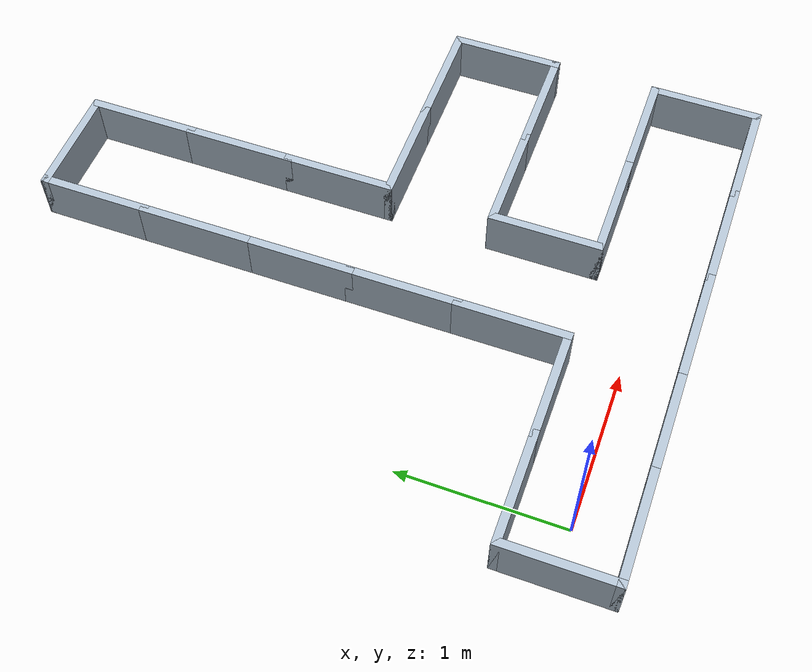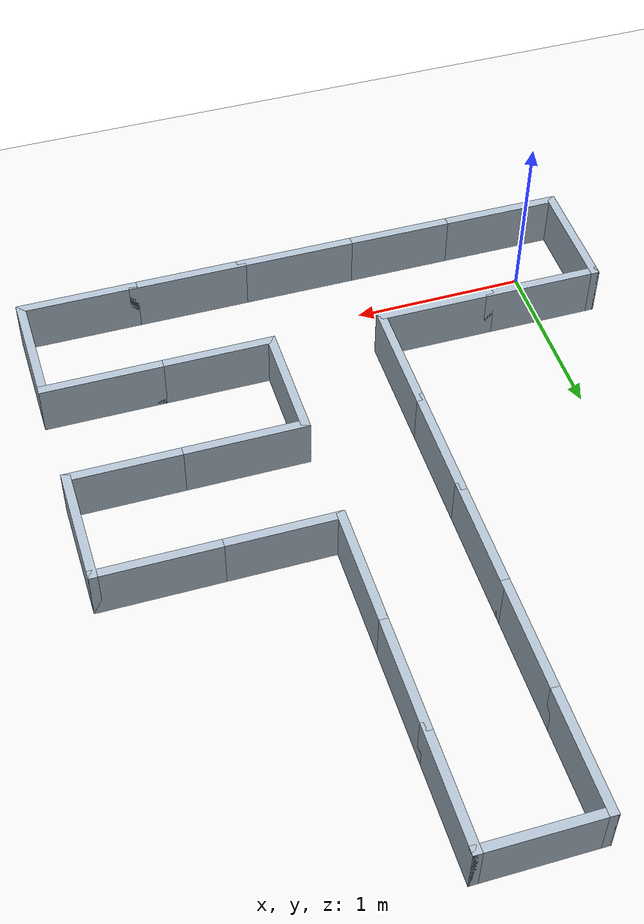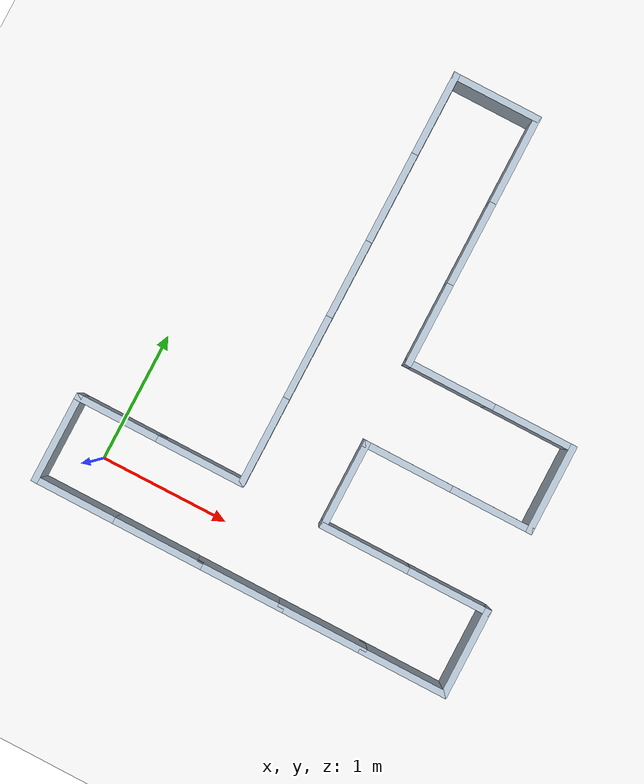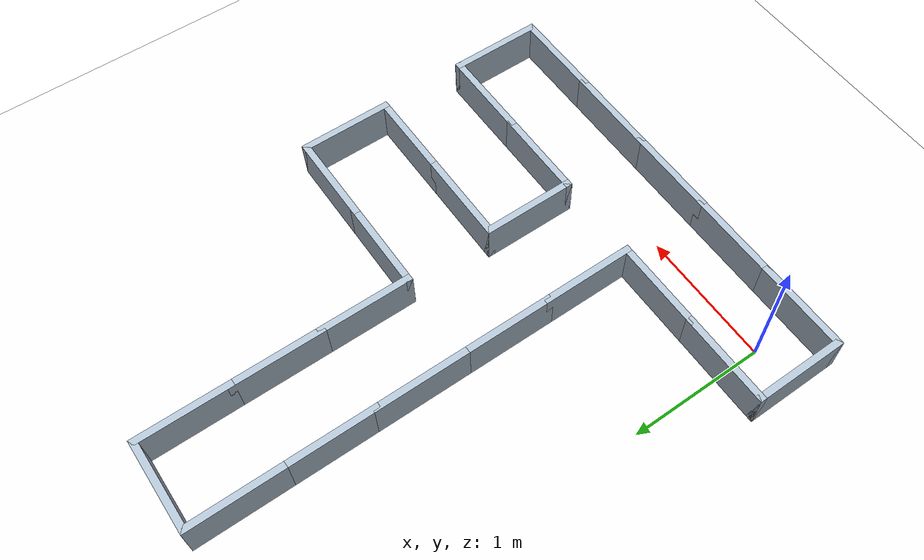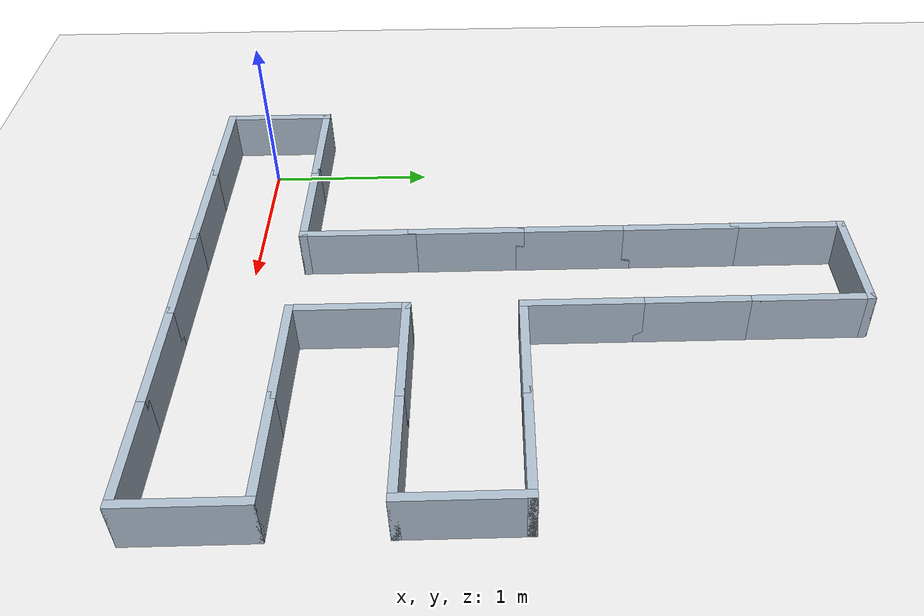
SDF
<sdf version="1.7">
  <world name="default">
    <gui fullscreen="0">
      <camera name="user_camera">
        <pose>1.3 -3 6 0 0.85 1.5708</pose>
        <view_controller>orbit</view_controller>
      </camera>
    </gui>
    <spherical_coordinates>
      <surface_model>EARTH_WGS84</surface_model>
      <latitude_deg>0</latitude_deg>
      <longitude_deg>0</longitude_deg>
      <elevation>0</elevation>
      <heading_deg>0</heading_deg>
    </spherical_coordinates>
    <scene>
      <ambient>0.55 0.55 0.55 1</ambient>
      <background>0.75 0.82 0.90 1</background>
      <shadows>1</shadows>
    </scene>
    <light name="sun" type="directional">
      <cast_shadows>1</cast_shadows>
      <pose>0 0 20 0 0 0</pose>
      <diffuse>0.9 0.9 0.9 1</diffuse>
      <specular>0.2 0.2 0.2 1</specular>
      <attenuation>
        <range>100</range>
        <constant>0.9</constant>
        <linear>0.01</linear>
        <quadratic>0.001</quadratic>
      </attenuation>
      <direction>-0.4 0.2 -0.9</direction>
    </light>
    <model name="ground_plane">
      <static>1</static>
      <link name="link">
        <collision name="collision">
          <geometry>
            <plane>
              <normal>0 0 1</normal>
              <size>100 100</size>
            </plane>
          </geometry>
        </collision>
        <visual name="visual">
          <geometry>
            <plane>
              <normal>0 0 1</normal>
              <size>100 100</size>
            </plane>
          </geometry>
          <material>
            <ambient>0.80 0.80 0.80 1</ambient>
            <diffuse>0.92 0.92 0.92 1</diffuse>
          </material>
        </visual>
      </link>
    </model>
    <model name="return_left_opening">
      <static>true</static>
      <link name="wall_0_0_-1_0">
        <pose>-0.325 0.0 .15 0 0 0</pose>
        <collision name="collision">
          <geometry>
            <box>
              <size>.05 .70 .30</size>
            </box>
          </geometry>
        </collision>
        <visual name="visual">
          <geometry>
            <box>
              <size>.05 .70 .30</size>
            </box>
          </geometry>
          <material>
            <ambient>.5 .56 .63 1</ambient>
            <diffuse>.68 .74 .80 1</diffuse>
          </material>
        </visual>
      </link>
      <link name="wall_0_0_0_-1">
        <pose>0.0 -0.325 .15 0 0 0</pose>
        <collision name="collision">
          <geometry>
            <box>
              <size>.70 .05 .30</size>
            </box>
          </geometry>
        </collision>
        <visual name="visual">
          <geometry>
            <box>
              <size>.70 .05 .30</size>
            </box>
          </geometry>
          <material>
            <ambient>.5 .56 .63 1</ambient>
            <diffuse>.68 .74 .80 1</diffuse>
          </material>
        </visual>
      </link>
      <link name="wall_0_0_0_1">
        <pose>0.0 0.325 .15 0 0 0</pose>
        <collision name="collision">
          <geometry>
            <box>
              <size>.70 .05 .30</size>
            </box>
          </geometry>
        </collision>
        <visual name="visual">
          <geometry>
            <box>
              <size>.70 .05 .30</size>
            </box>
          </geometry>
          <material>
            <ambient>.5 .56 .63 1</ambient>
            <diffuse>.68 .74 .80 1</diffuse>
          </material>
        </visual>
      </link>
      <link name="wall_1_0_0_-1">
        <pose>0.65 -0.325 .15 0 0 0</pose>
        <collision name="collision">
          <geometry>
            <box>
              <size>.70 .05 .30</size>
            </box>
          </geometry>
        </collision>
        <visual name="visual">
          <geometry>
            <box>
              <size>.70 .05 .30</size>
            </box>
          </geometry>
          <material>
            <ambient>.5 .56 .63 1</ambient>
            <diffuse>.68 .74 .80 1</diffuse>
          </material>
        </visual>
      </link>
      <link name="wall_1_0_0_1">
        <pose>0.65 0.325 .15 0 0 0</pose>
        <collision name="collision">
          <geometry>
            <box>
              <size>.70 .05 .30</size>
            </box>
          </geometry>
        </collision>
        <visual name="visual">
          <geometry>
            <box>
              <size>.70 .05 .30</size>
            </box>
          </geometry>
          <material>
            <ambient>.5 .56 .63 1</ambient>
            <diffuse>.68 .74 .80 1</diffuse>
          </material>
        </visual>
      </link>
      <link name="wall_2_0_0_-1">
        <pose>1.3 -0.325 .15 0 0 0</pose>
        <collision name="collision">
          <geometry>
            <box>
              <size>.70 .05 .30</size>
            </box>
          </geometry>
        </collision>
        <visual name="visual">
          <geometry>
            <box>
              <size>.70 .05 .30</size>
            </box>
          </geometry>
          <material>
            <ambient>.5 .56 .63 1</ambient>
            <diffuse>.68 .74 .80 1</diffuse>
          </material>
        </visual>
      </link>
      <link name="wall_2_1_-1_0">
        <pose>0.9750000000000001 0.65 .15 0 0 0</pose>
        <collision name="collision">
          <geometry>
            <box>
              <size>.05 .70 .30</size>
            </box>
          </geometry>
        </collision>
        <visual name="visual">
          <geometry>
            <box>
              <size>.05 .70 .30</size>
            </box>
          </geometry>
          <material>
            <ambient>.5 .56 .63 1</ambient>
            <diffuse>.68 .74 .80 1</diffuse>
          </material>
        </visual>
      </link>
      <link name="wall_2_1_1_0">
        <pose>1.625 0.65 .15 0 0 0</pose>
        <collision name="collision">
          <geometry>
            <box>
              <size>.05 .70 .30</size>
            </box>
          </geometry>
        </collision>
        <visual name="visual">
          <geometry>
            <box>
              <size>.05 .70 .30</size>
            </box>
          </geometry>
          <material>
            <ambient>.5 .56 .63 1</ambient>
            <diffuse>.68 .74 .80 1</diffuse>
          </material>
        </visual>
      </link>
      <link name="wall_2_2_-1_0">
        <pose>0.9750000000000001 1.3 .15 0 0 0</pose>
        <collision name="collision">
          <geometry>
            <box>
              <size>.05 .70 .30</size>
            </box>
          </geometry>
        </collision>
        <visual name="visual">
          <geometry>
            <box>
              <size>.05 .70 .30</size>
            </box>
          </geometry>
          <material>
            <ambient>.5 .56 .63 1</ambient>
            <diffuse>.68 .74 .80 1</diffuse>
          </material>
        </visual>
      </link>
      <link name="wall_2_3_-1_0">
        <pose>0.9750000000000001 1.9500000000000002 .15 0 0 0</pose>
        <collision name="collision">
          <geometry>
            <box>
              <size>.05 .70 .30</size>
            </box>
          </geometry>
        </collision>
        <visual name="visual">
          <geometry>
            <box>
              <size>.05 .70 .30</size>
            </box>
          </geometry>
          <material>
            <ambient>.5 .56 .63 1</ambient>
            <diffuse>.68 .74 .80 1</diffuse>
          </material>
        </visual>
      </link>
      <link name="wall_2_3_1_0">
        <pose>1.625 1.9500000000000002 .15 0 0 0</pose>
        <collision name="collision">
          <geometry>
            <box>
              <size>.05 .70 .30</size>
            </box>
          </geometry>
        </collision>
        <visual name="visual">
          <geometry>
            <box>
              <size>.05 .70 .30</size>
            </box>
          </geometry>
          <material>
            <ambient>.5 .56 .63 1</ambient>
            <diffuse>.68 .74 .80 1</diffuse>
          </material>
        </visual>
      </link>
      <link name="wall_2_4_-1_0">
        <pose>0.9750000000000001 2.6 .15 0 0 0</pose>
        <collision name="collision">
          <geometry>
            <box>
              <size>.05 .70 .30</size>
            </box>
          </geometry>
        </collision>
        <visual name="visual">
          <geometry>
            <box>
              <size>.05 .70 .30</size>
            </box>
          </geometry>
          <material>
            <ambient>.5 .56 .63 1</ambient>
            <diffuse>.68 .74 .80 1</diffuse>
          </material>
        </visual>
      </link>
      <link name="wall_2_4_1_0">
        <pose>1.625 2.6 .15 0 0 0</pose>
        <collision name="collision">
          <geometry>
            <box>
              <size>.05 .70 .30</size>
            </box>
          </geometry>
        </collision>
        <visual name="visual">
          <geometry>
            <box>
              <size>.05 .70 .30</size>
            </box>
          </geometry>
          <material>
            <ambient>.5 .56 .63 1</ambient>
            <diffuse>.68 .74 .80 1</diffuse>
          </material>
        </visual>
      </link>
      <link name="wall_2_5_-1_0">
        <pose>0.9750000000000001 3.25 .15 0 0 0</pose>
        <collision name="collision">
          <geometry>
            <box>
              <size>.05 .70 .30</size>
            </box>
          </geometry>
        </collision>
        <visual name="visual">
          <geometry>
            <box>
              <size>.05 .70 .30</size>
            </box>
          </geometry>
          <material>
            <ambient>.5 .56 .63 1</ambient>
            <diffuse>.68 .74 .80 1</diffuse>
          </material>
        </visual>
      </link>
      <link name="wall_2_5_1_0">
        <pose>1.625 3.25 .15 0 0 0</pose>
        <collision name="collision">
          <geometry>
            <box>
              <size>.05 .70 .30</size>
            </box>
          </geometry>
        </collision>
        <visual name="visual">
          <geometry>
            <box>
              <size>.05 .70 .30</size>
            </box>
          </geometry>
          <material>
            <ambient>.5 .56 .63 1</ambient>
            <diffuse>.68 .74 .80 1</diffuse>
          </material>
        </visual>
      </link>
      <link name="wall_2_5_0_1">
        <pose>1.3 3.575 .15 0 0 0</pose>
        <collision name="collision">
          <geometry>
            <box>
              <size>.70 .05 .30</size>
            </box>
          </geometry>
        </collision>
        <visual name="visual">
          <geometry>
            <box>
              <size>.70 .05 .30</size>
            </box>
          </geometry>
          <material>
            <ambient>.5 .56 .63 1</ambient>
            <diffuse>.68 .74 .80 1</diffuse>
          </material>
        </visual>
      </link>
      <link name="wall_3_0_0_-1">
        <pose>1.9500000000000002 -0.325 .15 0 0 0</pose>
        <collision name="collision">
          <geometry>
            <box>
              <size>.70 .05 .30</size>
            </box>
          </geometry>
        </collision>
        <visual name="visual">
          <geometry>
            <box>
              <size>.70 .05 .30</size>
            </box>
          </geometry>
          <material>
            <ambient>.5 .56 .63 1</ambient>
            <diffuse>.68 .74 .80 1</diffuse>
          </material>
        </visual>
      </link>
      <link name="wall_3_0_0_1">
        <pose>1.9500000000000002 0.325 .15 0 0 0</pose>
        <collision name="collision">
          <geometry>
            <box>
              <size>.70 .05 .30</size>
            </box>
          </geometry>
        </collision>
        <visual name="visual">
          <geometry>
            <box>
              <size>.70 .05 .30</size>
            </box>
          </geometry>
          <material>
            <ambient>.5 .56 .63 1</ambient>
            <diffuse>.68 .74 .80 1</diffuse>
          </material>
        </visual>
      </link>
      <link name="wall_3_2_0_-1">
        <pose>1.9500000000000002 0.9750000000000001 .15 0 0 0</pose>
        <collision name="collision">
          <geometry>
            <box>
              <size>.70 .05 .30</size>
            </box>
          </geometry>
        </collision>
        <visual name="visual">
          <geometry>
            <box>
              <size>.70 .05 .30</size>
            </box>
          </geometry>
          <material>
            <ambient>.5 .56 .63 1</ambient>
            <diffuse>.68 .74 .80 1</diffuse>
          </material>
        </visual>
      </link>
      <link name="wall_3_2_0_1">
        <pose>1.9500000000000002 1.625 .15 0 0 0</pose>
        <collision name="collision">
          <geometry>
            <box>
              <size>.70 .05 .30</size>
            </box>
          </geometry>
        </collision>
        <visual name="visual">
          <geometry>
            <box>
              <size>.70 .05 .30</size>
            </box>
          </geometry>
          <material>
            <ambient>.5 .56 .63 1</ambient>
            <diffuse>.68 .74 .80 1</diffuse>
          </material>
        </visual>
      </link>
      <link name="wall_4_0_1_0">
        <pose>2.9250000000000003 0.0 .15 0 0 0</pose>
        <collision name="collision">
          <geometry>
            <box>
              <size>.05 .70 .30</size>
            </box>
          </geometry>
        </collision>
        <visual name="visual">
          <geometry>
            <box>
              <size>.05 .70 .30</size>
            </box>
          </geometry>
          <material>
            <ambient>.5 .56 .63 1</ambient>
            <diffuse>.68 .74 .80 1</diffuse>
          </material>
        </visual>
      </link>
      <link name="wall_4_0_0_-1">
        <pose>2.6 -0.325 .15 0 0 0</pose>
        <collision name="collision">
          <geometry>
            <box>
              <size>.70 .05 .30</size>
            </box>
          </geometry>
        </collision>
        <visual name="visual">
          <geometry>
            <box>
              <size>.70 .05 .30</size>
            </box>
          </geometry>
          <material>
            <ambient>.5 .56 .63 1</ambient>
            <diffuse>.68 .74 .80 1</diffuse>
          </material>
        </visual>
      </link>
      <link name="wall_4_0_0_1">
        <pose>2.6 0.325 .15 0 0 0</pose>
        <collision name="collision">
          <geometry>
            <box>
              <size>.70 .05 .30</size>
            </box>
          </geometry>
        </collision>
        <visual name="visual">
          <geometry>
            <box>
              <size>.70 .05 .30</size>
            </box>
          </geometry>
          <material>
            <ambient>.5 .56 .63 1</ambient>
            <diffuse>.68 .74 .80 1</diffuse>
          </material>
        </visual>
      </link>
      <link name="wall_4_2_1_0">
        <pose>2.9250000000000003 1.3 .15 0 0 0</pose>
        <collision name="collision">
          <geometry>
            <box>
              <size>.05 .70 .30</size>
            </box>
          </geometry>
        </collision>
        <visual name="visual">
          <geometry>
            <box>
              <size>.05 .70 .30</size>
            </box>
          </geometry>
          <material>
            <ambient>.5 .56 .63 1</ambient>
            <diffuse>.68 .74 .80 1</diffuse>
          </material>
        </visual>
      </link>
      <link name="wall_4_2_0_-1">
        <pose>2.6 0.9750000000000001 .15 0 0 0</pose>
        <collision name="collision">
          <geometry>
            <box>
              <size>.70 .05 .30</size>
            </box>
          </geometry>
        </collision>
        <visual name="visual">
          <geometry>
            <box>
              <size>.70 .05 .30</size>
            </box>
          </geometry>
          <material>
            <ambient>.5 .56 .63 1</ambient>
            <diffuse>.68 .74 .80 1</diffuse>
          </material>
        </visual>
      </link>
      <link name="wall_4_2_0_1">
        <pose>2.6 1.625 .15 0 0 0</pose>
        <collision name="collision">
          <geometry>
            <box>
              <size>.70 .05 .30</size>
            </box>
          </geometry>
        </collision>
        <visual name="visual">
          <geometry>
            <box>
              <size>.70 .05 .30</size>
            </box>
          </geometry>
          <material>
            <ambient>.5 .56 .63 1</ambient>
            <diffuse>.68 .74 .80 1</diffuse>
          </material>
        </visual>
      </link>
    </model>
  </world>
</sdf>
